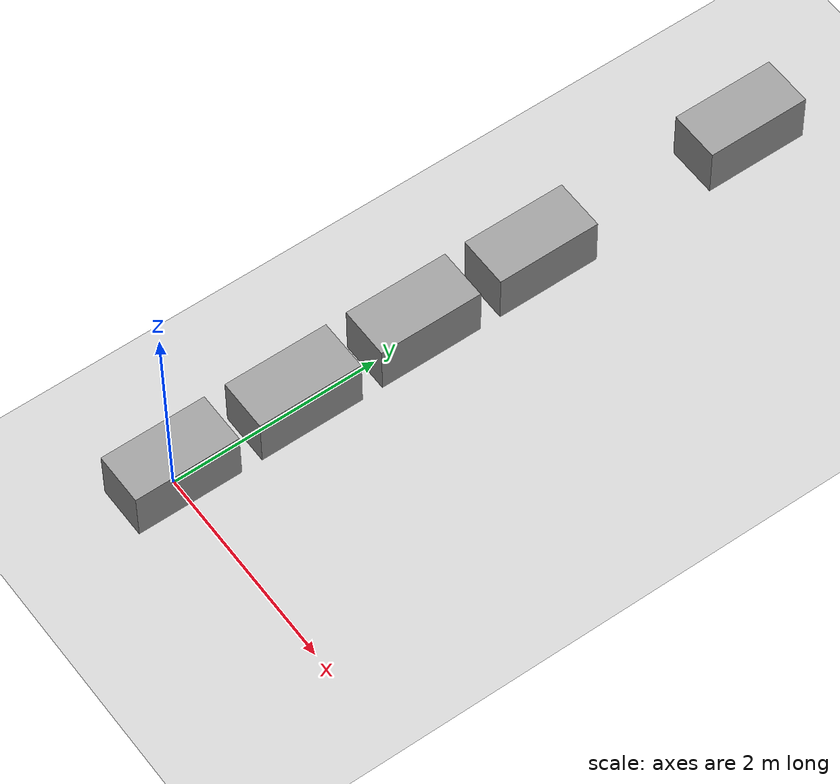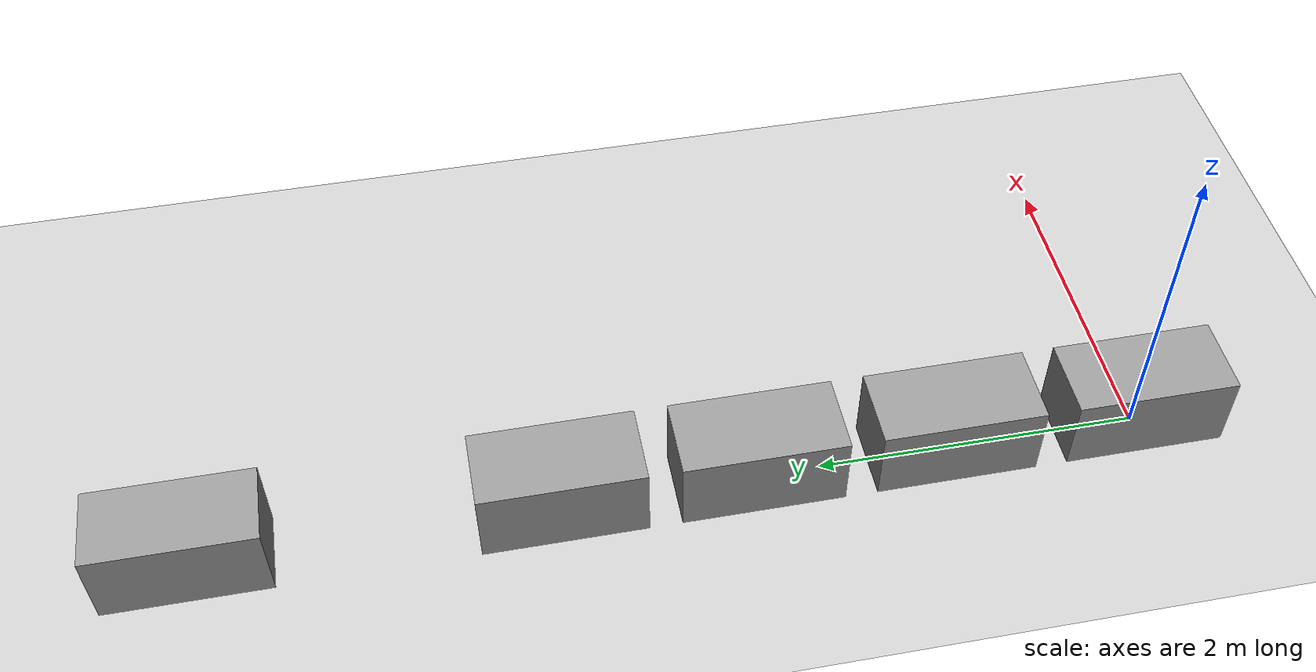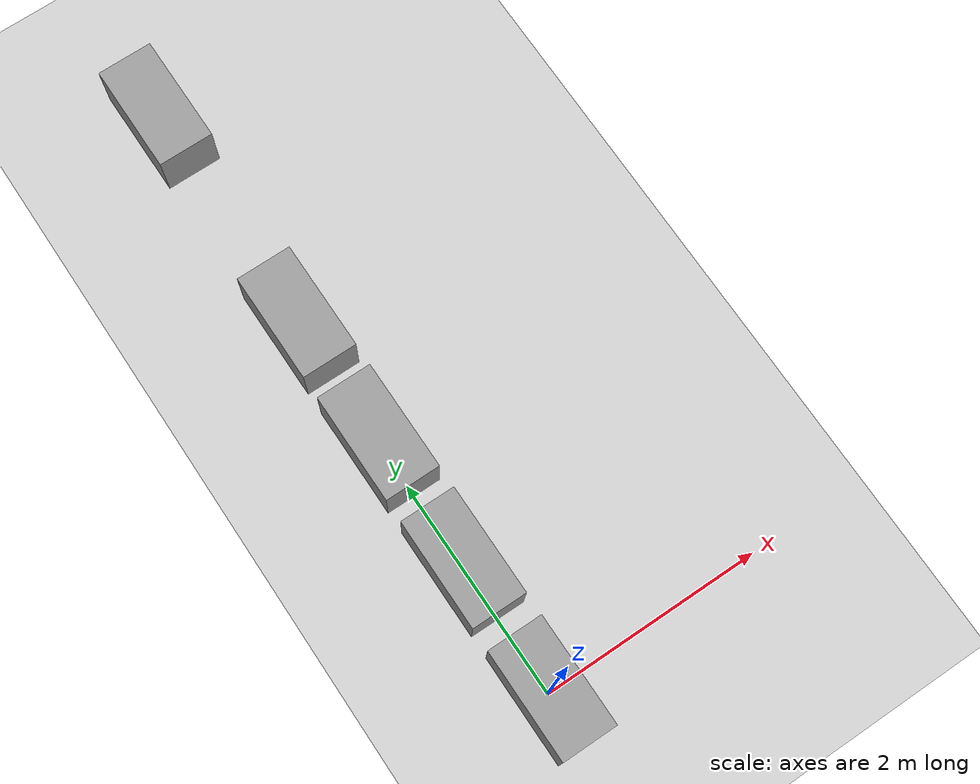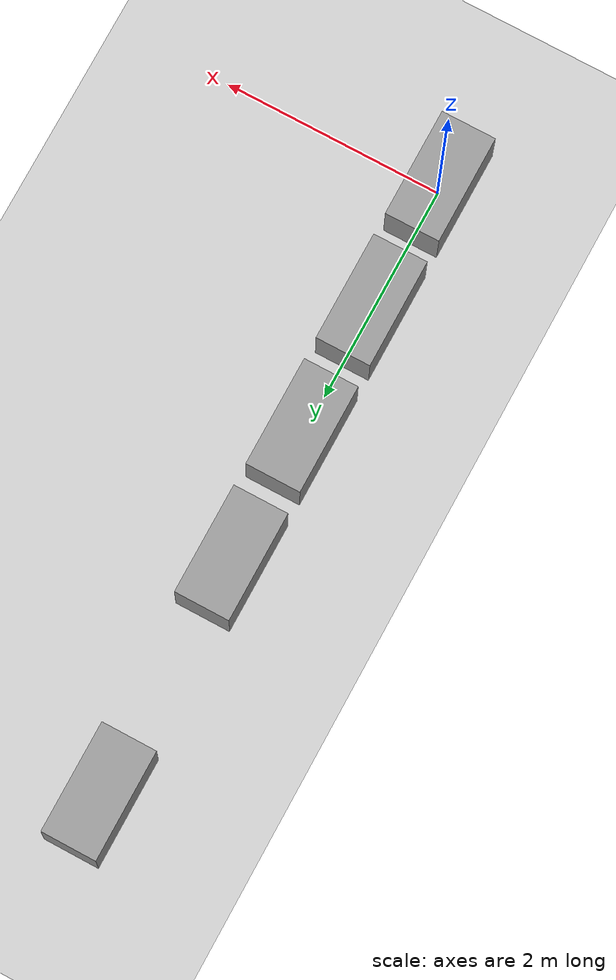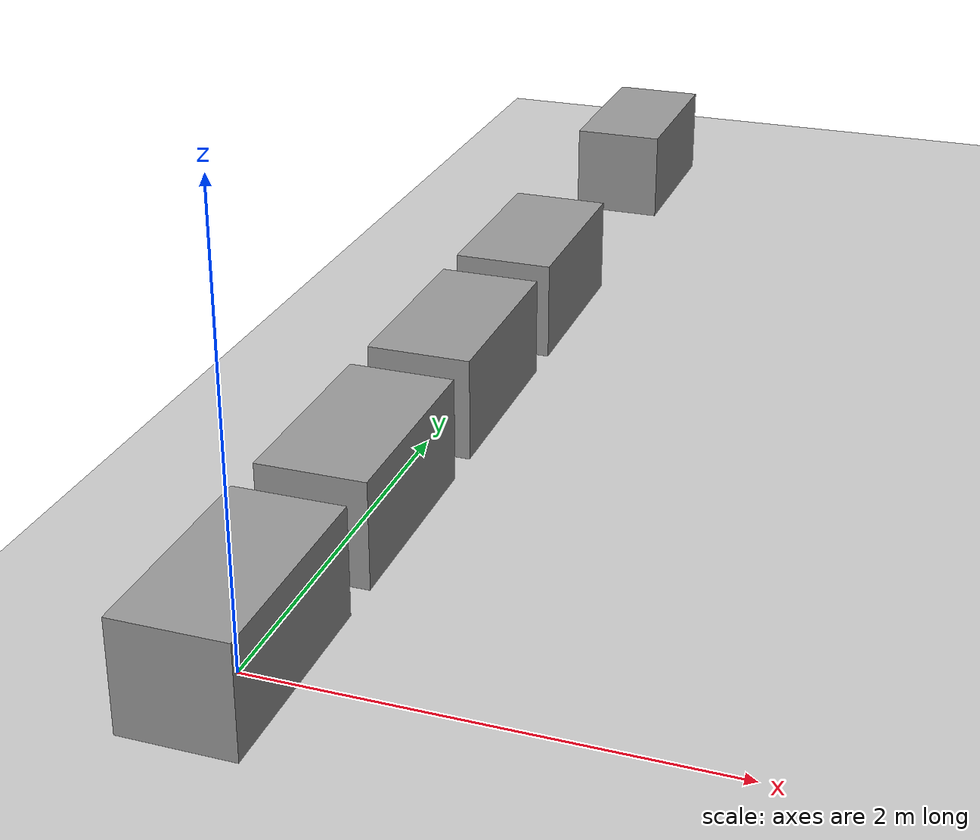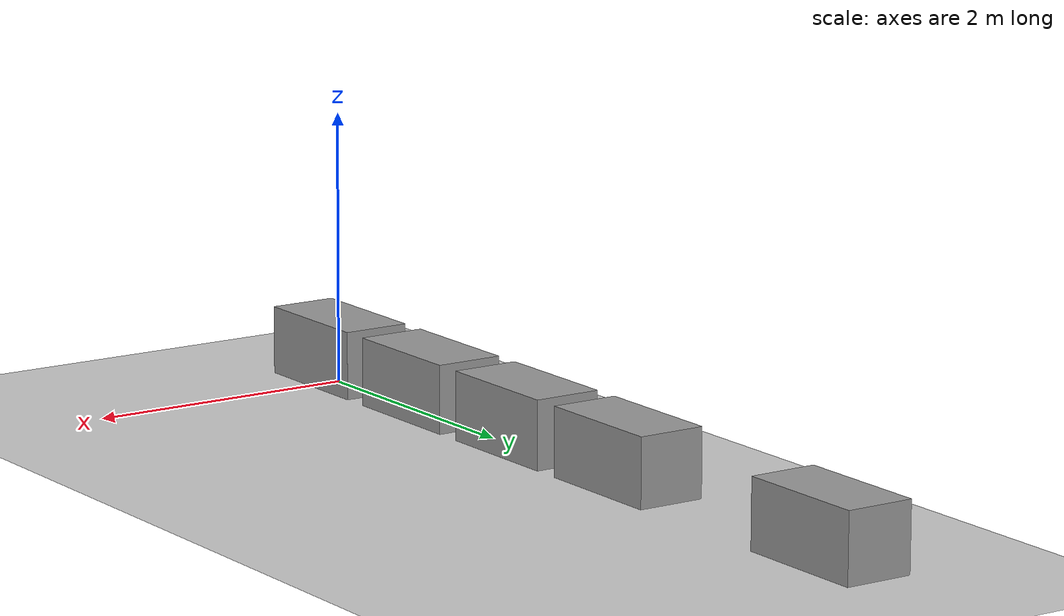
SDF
<?xml version="1.0" ?>
<sdf version="1.6">

  <world name="parallel_parking_world_simple">
    <!-- Include necessary plugins -->
    <include>
      <uri>model://sun</uri>
    </include>
    <include>
      <uri>model://ground_plane</uri>
    </include>

      <model name='my_ground_plane'>
      <static>1</static>
      <link name='link'>
        <collision name='collision'>
          <geometry>
            <plane>
              <normal>0 0 1</normal>
              <size>100 100</size>
            </plane>
          </geometry>
          <surface>
            <friction>
              <ode>
                <mu>100</mu>
                <mu2>50</mu2>
              </ode>
              <torsional>
                <ode/>
              </torsional>
            </friction>
            <contact>
              <ode/>
            </contact>
            <bounce/>
          </surface>
          <max_contacts>10</max_contacts>
        </collision>
        <visual name='visual'>
          <cast_shadows>0</cast_shadows>
          <geometry>
            <plane>
              <normal>0 0 1</normal>
              <size>28 28</size>
            </plane>
          </geometry>
          <material>
            <script>
              <uri>model://my_ground_plane/materials/scripts</uri>
              <uri>model://my_ground_plane/materials/textures</uri>
              <name>MyGroundPlane/Image</name>
            </script>
          </material>
        </visual>
        <self_collide>0</self_collide>
        <kinematic>0</kinematic>
        <gravity>1</gravity>
        <enable_wind>0</enable_wind>
      </link>
    </model>

    <!-- Quader in einer Reihe (wie hintereinander geparkte Autos) -->
    <model name="quader_reihe">
      <static>true</static>

      <!-- Erster Quader -->
      <link name="quader_1">
        <pose>0 0 0.25 0 0 0</pose>
        <collision name="collision">
          <geometry>
            <box>
              <size>0.5 1 0.5</size>
            </box>
          </geometry>
        </collision>
        <visual name="visual">
          <geometry>
            <box>
              <size>0.5 1 0.5</size>
            </box>
          </geometry>
          <material>
            <script>
              <uri>file://media/materials/scripts/gazebo.material</uri>
              <name>Gazebo/Grey</name>
            </script>
          </material>
        </visual>
      </link>

      <!-- Zweiter Quader -->
      <link name="quader_2">
        <pose>0 1.2 0.25 0 0 0</pose> <!-- Abstand 1 (Länge) + 0.2 -->
        <collision name="collision">
          <geometry>
            <box>
              <size>0.5 1 0.5</size>
            </box>
          </geometry>
        </collision>
        <visual name="visual">
          <geometry>
            <box>
              <size>0.5 1 0.5</size>
            </box>
          </geometry>
          <material>
            <script>
              <uri>file://media/materials/scripts/gazebo.material</uri>
              <name>Gazebo/Grey</name>
            </script>
          </material>
        </visual>
      </link>

      <!-- Dritter Quader -->
      <link name="quader_3">
        <pose>0 2.4 0.25 0 0 0</pose> <!-- Abstand 2*1.2 = 2.4 -->
        <collision name="collision">
          <geometry>
            <box>
              <size>0.5 1 0.5</size>
            </box>
          </geometry>
        </collision>
        <visual name="visual">
          <geometry>
            <box>
              <size>0.5 1 0.5</size>
            </box>
          </geometry>
          <material>
            <script>
              <uri>file://media/materials/scripts/gazebo.material</uri>
              <name>Gazebo/Grey</name>
            </script>
          </material>
        </visual>
      </link>

      <!-- Vierter Quader -->
      <link name="quader_4">
        <pose>0 3.6 0.25 0 0 0</pose> <!-- Abstand 3*1.2 = 3.6 -->
        <collision name="collision">
          <geometry>
            <box>
              <size>0.5 1 0.5</size>
            </box>
          </geometry>
        </collision>
        <visual name="visual">
          <geometry>
            <box>
              <size>0.5 1 0.5</size>
            </box>
          </geometry>
          <material>
            <script>
              <uri>file://media/materials/scripts/gazebo.material</uri>
              <name>Gazebo/Grey</name>
            </script>
          </material>
        </visual>
      </link>

      <!-- Fünfter Quader -->
      <link name="quader_5">
        <pose>0 5.8 0.25 0 0 0</pose> <!-- Abstand 4*1.2 = 4.8 -->
        <collision name="collision">
          <geometry>
            <box>
              <size>0.5 1 0.5</size>
            </box>
          </geometry>
        </collision>
        <visual name="visual">
          <geometry>
            <box>
              <size>0.5 1 0.5</size>
            </box>
          </geometry>
          <material>
            <script>
              <uri>file://media/materials/scripts/gazebo.material</uri>
              <name>Gazebo/Grey</name>
            </script>
          </material>
        </visual>
      </link>
    </model>

    <!-- Physics and other world settings -->
    <physics name="default_physics" default="true" type="ode">
      <gravity>0 0 -9.8</gravity>
    </physics>
  </world>
</sdf>
